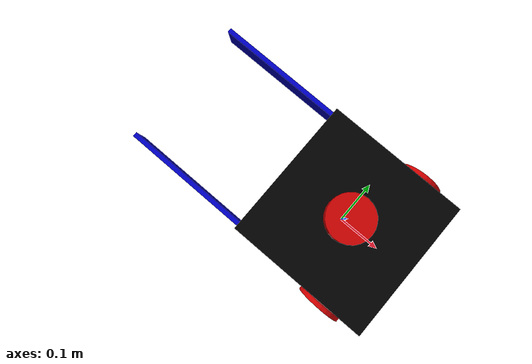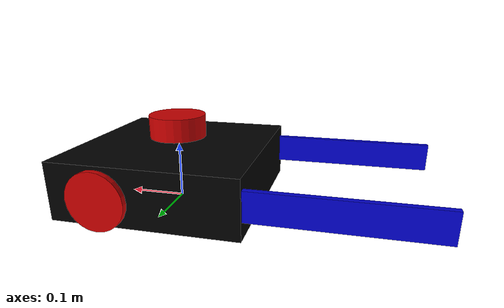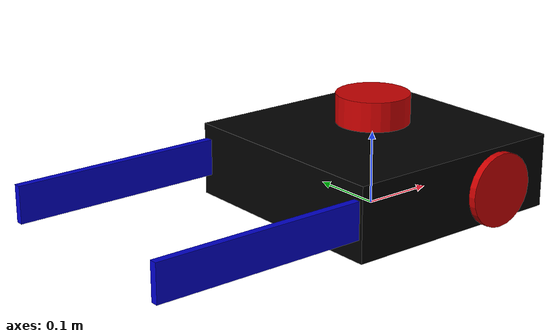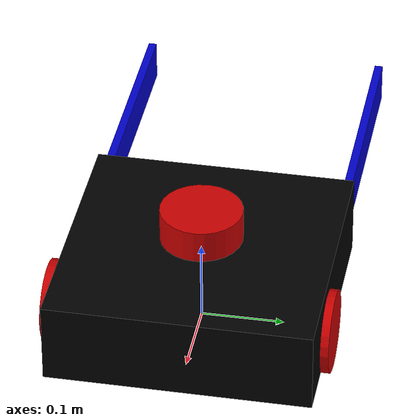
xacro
<?xml version="1.0"?>

<!-- Ensures xacro extension is being used -->
<robot xmlns:xacro="http://www.ros.org/wiki/xacro" name="robot">

    <!-- Setting up robot parameters -->
  <xacro:property name="base_width" value="0.32"/>
  <xacro:property name="base_len" value="0.32"/>
  <xacro:property name="wheel_radius" value="0.07"/>
  <xacro:property name="base_wheel_gap" value="0.007"/>
  <xacro:property name="wheel_separation" value="0.30"/>
  <xacro:property name="wheel_joint_offset" value="0.07"/>

  <!-- Setting up caster wheel parameters  -->
  <xacro:property name="caster_wheel_radius" value="${wheel_radius/2}"/>
  <xacro:property name="caster_wheel_mass" value="0.002"/>
  <xacro:property name="caster_wheel_joint_offset" value="-0.104"/>
  <!-- Learning Point: Setting this paramters in beginning will avoid error of robot not being constructed properly and misaligned  -->

  <!-- Includes plugin file created  -->
  <xacro:include filename="$(find robot_model_pkg)/urdf/robot_gaz_drive.xacro"/>

    <!-- Includes lidar created  -->
  <xacro:include filename="$(find robot_model_pkg)/urdf/lidar.xacro"/>

    <!-- Setting inertial for shapes so the model maintain common values  -->
  <xacro:macro name="cylinder_inertia" params="m r h">
    <inertial>
      <mass value="${m}"/>
      <inertia ixx="${m*(3*r*r+h*h)/12}" ixy = "0" ixz = "0" iyy="${m*(3*r*r+h*h)/12}" iyz = "0" izz="${m*r*r/2}"/>
    </inertial>
  </xacro:macro>

  <xacro:macro name="box_inertia" params="m w h d">
    <inertial>
      <mass value="${m}"/>
      <inertia ixx="${m / 12.0 * (d*d + h*h)}" ixy="0.0" ixz="0.0" iyy="${m / 12.0 * (w*w + h*h)}" iyz="0.0" izz="${m / 12.0 * (w*w + d*d)}"/>
    </inertial>
  </xacro:macro>

  <xacro:macro name="sphere_inertia" params="m r">
    <inertial>
      <mass value="${m}"/>
      <inertia ixx="${2.0*m*(r*r)/5.0}" ixy="0.0" ixz="0.0" iyy="${2.0*m*(r*r)/5.0}" iyz="0.0" izz="${2.0*m*(r*r)/5.0}"/>
    </inertial>
  </xacro:macro>
  <!-- Learning Point: Set the inertial values for objective types in beginning to avoid the error of links being placed on different heights and not being attached  -->

  <!-- Setting color values for robot properties -->
  <material name="blue">
    <color rgba="0 0 0.8 1"/>
  </material>
  <material name="black">
    <color rgba="0 0 0 1"/>
  </material>
  <material name="white">
    <color rgba="1 1 1 1"/>
  </material>
  <material name="red">
    <color rgba="0.8 0.0 0.0 1.0"/>
  </material>

   <!-- Base object located under the robot chassis - To link all objects to construct the robot properly  -->  <link name="base">
    <xacro:box_inertia m="10" w="0.001" h="0.001" d="0.001"/>
    <visual>
        <origin xyz="0 0 0" rpy="0 0 0" />
        <geometry>
            <box size="0.001 0.001 0.05" />
        </geometry>
    </visual>
  </link>

  <!-- Base_link is the main center box simulating the chassis  -->
    <link name="base_link">
    <xacro:box_inertia m="1" w="${base_len}" h="${base_width}" d="0.1"/>
    <visual>
      <geometry>
        <box size="${base_len} ${base_width} 0.1"/>
      </geometry>
      <material name="black"/>
    </visual>
    <collision>
      <geometry>
        <box size="${base_len} ${base_width} 0.1"/>
      </geometry>
    </collision>
  </link>
  <!-- Learning Point: First draft of robot had a huge chassis box and caused an issue with navigating through the pillars. Therefore, above dimensions are quite small to be able to navigate easier -->

  <!-- Connecting main base_link box with base to properly construct it   -->
  <joint name="base_link_joint" type="fixed">
    <origin xyz="0 0 ${wheel_radius + 0.005}" rpy="0 0 0" />
    <parent link="base"/>
    <child link="base_link" />
  </joint>

   <!-- Creating wheel links to move robot   -->
  <xacro:macro name="wheel" params="prefix reflect">
    <link name="${prefix}_wheel">
      <visual>
        <origin xyz="0 0 0" rpy="${pi/2} 0 0"/>
        <geometry>
          <cylinder radius="${wheel_radius}" length="0.01"/>
        </geometry>
        <material name="red"/>
      </visual>
      <collision>
        <origin xyz="0 0 0" rpy="${pi/2} 0 0"/>
        <geometry>
          <cylinder radius="${wheel_radius}" length="0.01"/>
        </geometry>
      </collision>
      <xacro:cylinder_inertia m="1" r="${wheel_radius}" h="0.01"/>
    </link>

    <!-- Connecting wheels with base_link box of robot -->
    <joint name="${prefix}_wheel_joint" type="continuous">
      <axis xyz="0 1 0" rpy="0 0 0" />
      <parent link="base_link"/>
      <child link="${prefix}_wheel"/>
      <origin xyz="${wheel_joint_offset} ${((base_width/2)+base_wheel_gap)*reflect} -0.005" rpy="0 0 0"/>
    </joint>

  </xacro:macro>

  <!-- Creating prefix and placing them opposite each other -->
  <xacro:wheel prefix="left" reflect="1"/>
  <xacro:wheel prefix="right" reflect="-1"/>

  <!-- Setting up caster wheel-->
  <link name="caster_wheel">
    <visual>
      <origin xyz="0 0 0" rpy="0 0 0"/>
      <geometry>
        <sphere radius="${caster_wheel_radius}"/>
      </geometry>
      <material name="red"/>
    </visual>
    <collision>
      <origin xyz="0 0 0" rpy="0 0 0"/>
      <geometry>
        <sphere radius="${caster_wheel_radius}"/>
      </geometry>
    </collision>
    <xacro:sphere_inertia m="1" r="${caster_wheel_radius}"/>
  </link>

  <!-- Connecting caster wheel with base_link so it gets connected with robot -->
  <joint name="caster_wheel_joint" type="continuous">
    <axis xyz="0 1 0" rpy="0 0 0" />
    <parent link="base_link"/>
    <child link="caster_wheel"/>
    <origin xyz="${caster_wheel_joint_offset} 0 -${caster_wheel_radius+0.005}" rpy="0 0 0"/>
  </joint>

<!-- Left guide: present left side of robot -->
<link name="left_guide">
  <xacro:box_inertia m="1" w="${base_len}" h="${base_width}" d="0.01"/>
  <visual>
    <geometry>
      <box size="0.5 0.01 0.05"/>
    </geometry>
  <link name="left_guide">
    <xacro:box_inertia m="1" w="${base_len}" h="${base_width}" d="0.01"/>
    <visual>
      <geometry>
        <box size="0.5 0.01 0.05"/>
      </geometry>
      <material name="blue"/>
    </visual>
    <collision>
      <geometry>
        <box size="0.5 0.01 0.05"/>
      </geometry>
    </collision>
  </link>

  <!-- Left guide: connecting link along with adding visual and collusion parameters  -->
  <joint name="left_guide_joint" type="fixed">
    <origin xyz="-0.2 0.5 0.0" rpy="0 0 0" />
    <parent link="base"/>
    <child link="left_guide" />
  </joint>
    <material name="blue"/>
  </visual>
  <collision>
    <geometry>
      <box size="0.5 0.01 0.05"/>
    </geometry>
  </collision>
</link>

<!-- Left guide: connecting link to base-->
<joint name="left_guide_joint" type="fixed">
  <origin xyz="-0.2 0.15 0.06" rpy="0 0 0" />
  <parent link="base"/>
  <child link="left_guide" />
</joint>

<!--Right guide: present right side of robot -->
<link name="right_guide">
  <xacro:box_inertia m="1" w="${base_len}" h="${base_width}" d="0.01"/>
  <visual>
    <geometry>
      <box size="0.5 0.01 0.05"/>
    </geometry>
  <link name="right_guide">
    <xacro:box_inertia m="1" w="${base_len}" h="${base_width}" d="0.01"/>
    <visual>
      <geometry>
        <box size="0.5 0.01 0.05"/>
      </geometry>
      <material name="blue"/>
    </visual>
    <collision>
      <geometry>
        <box size="0.5 0.01 0.05"/>
      </geometry>
    </collision>
  </link>

  <!-- Right guide: connecting link along with adding visual and collusion parameters  -->
  <joint name="right_guide_joint" type="fixed">
    <origin xyz="-0.2 0.15 0.06" rpy="0 0 0" />
    <parent link="base"/>
    <child link="right_guide" />
  </joint>
    <material name="blue"/>
  </visual>
  <collision>
    <geometry>
      <box size="0.5 0.01 0.05"/>
    </geometry>
  </collision>
</link>

<!-- Right guide: connecting link to base-->
<joint name="right_guide_joint" type="fixed">
  <origin xyz="-0.2 -0.15 0.06" rpy="0 0 0" />
  <parent link="base"/>
  <child link="right_guide" />
</joint>

<!-- Learning Point: Joints are for left and right guidance are set twice to properly set the connection to robot and to avoid the error about 2 root links conflicting each other  -->

</robot>

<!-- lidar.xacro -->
<robot xmlns:xacro="http://www.ros.org/wiki/xacro">

  <!-- File for adding lidar to robot -->

    <!-- Setting up basic parameters that will be used below  -->
  <xacro:property name="pi" value="3.14159265359"/>
  <xacro:property name="wheel_radius" value="0.05"/>

  <!-- Connecting Lidar to base_link which is body of robot  -->
  <joint name="laser_joint" type="fixed">
    <parent link="base_link"/>
    <child link="laser_frame"/>
    <origin xyz="0 0 0.08" rpy="0 0 0"/>
  </joint>

    <!-- Creating link for lidar and adding visual, geometry and inertia   -->
  <link name="laser_frame">
      <visual>
        <geometry>
          <cylinder radius="0.05" length="0.04"/>
        </geometry>
        <material name="red"/>
      </visual>
      <collision>
        <geometry>
          <cylinder radius="0.05" length="0.04"/>
        </geometry>
      </collision>
      <xacro:macro name="cylinder_inertia" params="m r h">
        <inertia ixx="${m*(3*r**2 + h**2)/12}" ixy="0" ixz="0" iyy="${m*(3*r**2 + h**2)/12}" iyz="0" izz="${m*(r**2)/2}"/>
      </xacro:macro>
      <xacro:cylinder_inertia m="0.01" r="${wheel_radius}" h="0.01"/>
  </link>
    <!-- Using some similar properties as wheel to ensure proper shape-->

  <!-- Creating Gazebo tag -->
  <gazebo reference="laser_frame">
  <sensor name="laser" type="ray">
    <pose>0 0 0 0 0 0</pose>
    <visualize>true</visualize>
    <update_rate>10</update_rate>

    <!-- Setting up properties of Lidar - 360 degree scan, resolution and angle -->
    <ray>
      <scan>
        <horizontal>
          <samples>360</samples>
          <resolution>1</resolution>
          <min_angle>-3.14</min_angle>
          <max_angle>3.14</max_angle>
        </horizontal>
      </scan>
      <range>
        <min>0.3</min>
        <max>12</max>
        <resolution>0.01</resolution>
      </range>
    </ray>

     <!-- Setting up plugin to use library for lidar -->
    <plugin name="laser_controller" filename="libgazebo_ros_ray_sensor.so">
      <ros>
        <argument>/out:=scan</argument>
      </ros>
      <output_type>sensor_msgs/LaserScan</output_type>
      <frame_name>laser_frame</frame_name>
    </plugin>
  </sensor>
</gazebo>

</robot>
